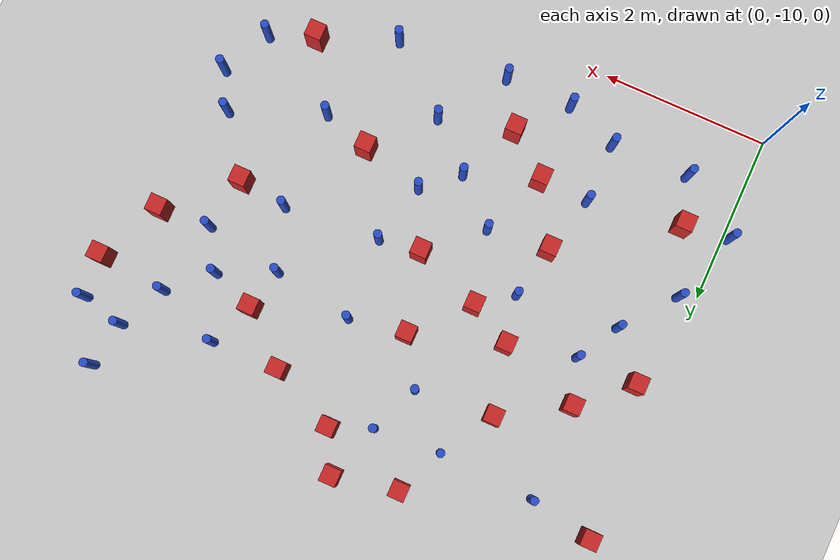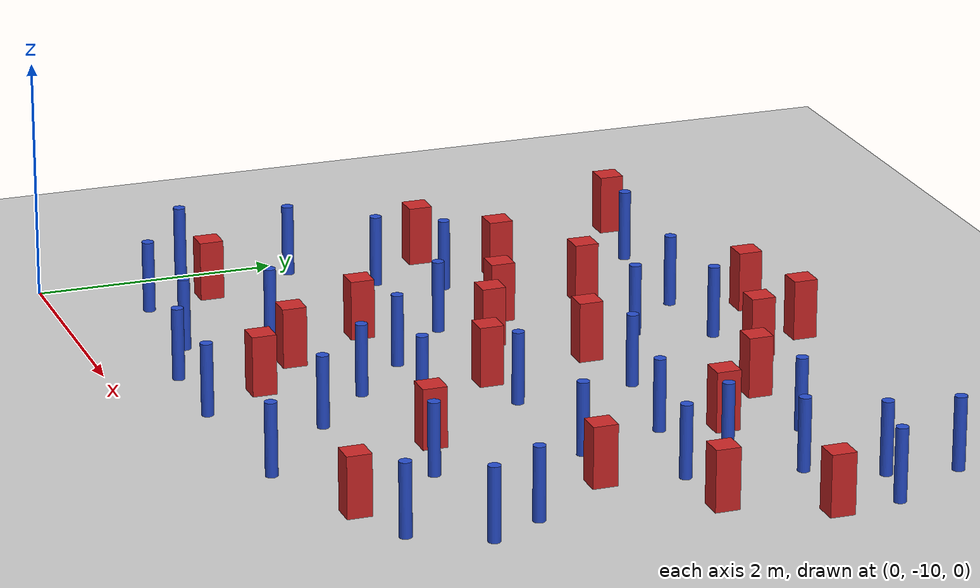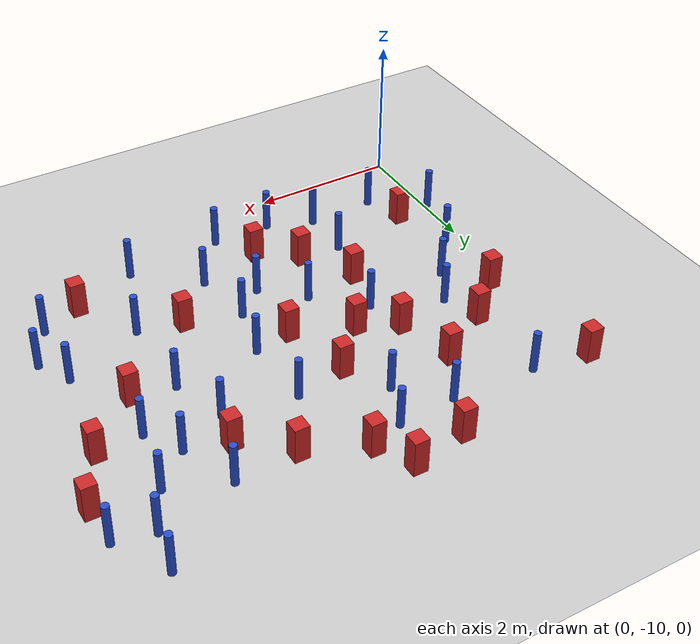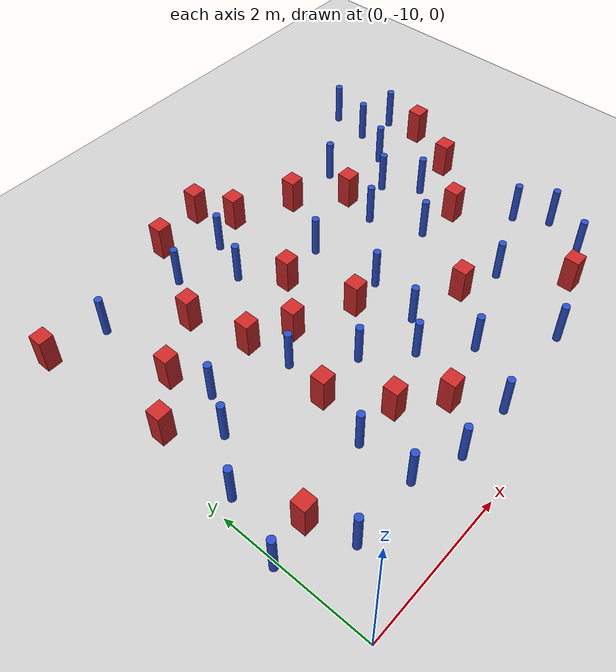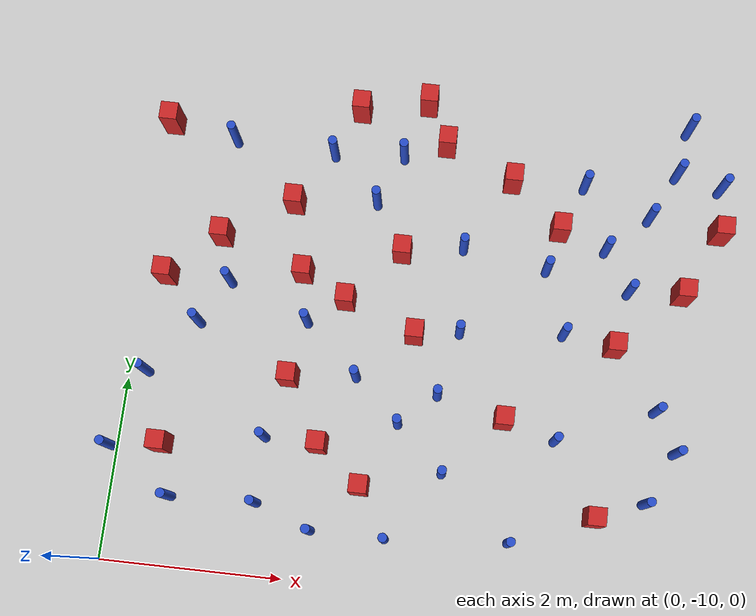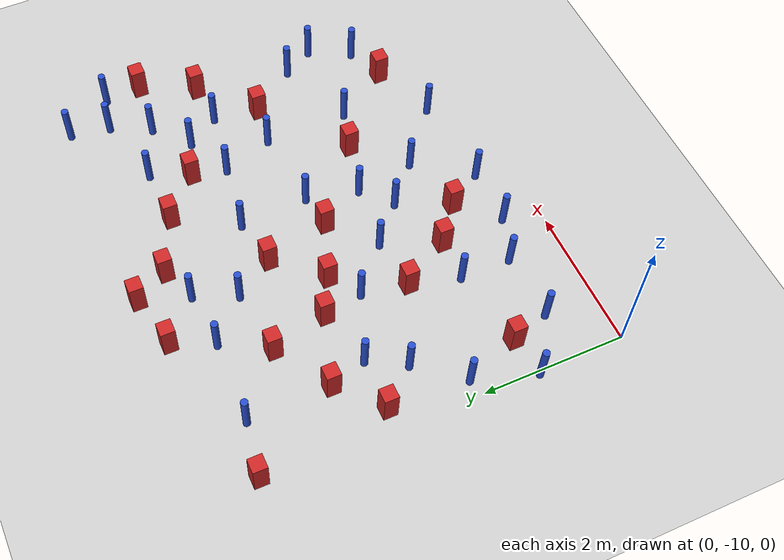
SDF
<sdf version="1.6">
 <world name="default">
  <model name="ground_plane">
   <static>1</static>
   <link name="link">
    <collision name="collision">
     <geometry><plane><normal>0 0 1</normal><size>100 100</size></plane></geometry>
     <surface><friction><ode><mu>100</mu><mu2>50</mu2></ode></friction></surface>
    </collision>
    <visual name="visual">
     <cast_shadows>0</cast_shadows>
     <geometry><plane><normal>0 0 1</normal><size>100 100</size></plane></geometry>
     <material>
      <ambient>1.0 1.0 1.0 1.0</ambient>
      <diffuse>0.8 0.8 0.8 1.0</diffuse>
      <specular>0.01 0.01 0.01 1.000000</specular>
     </material>
    </visual>
   </link>
  </model>
  <model name="pole_obstacle1">
   <static>true</static>
   <pose>4.55269154058 -6.26826545625 2.88873142074e-08 -9.90536690842e-09 4.60219948965e-07 -1.20965994976e-07</pose>
   <link name="link">
    <pose>0 0 0.3 0 -0 0</pose>
    <inertial>
     <mass>1</mass>
     <inertia><ixx>0.145833</ixx><ixy>0</ixy><ixz>0</ixz><iyy>0.145833</iyy><iyz>0</iyz><izz>0.125</izz></inertia>
    </inertial>
    <collision name="collision">
     <geometry><cylinder><radius>0.05</radius><length>.6</length></cylinder></geometry>
    </collision>
    <visual name="visual">
     <geometry><cylinder><radius>0.05</radius><length>.6</length></cylinder></geometry>
     <material>
      <script><name>Gazebo/Blue</name><uri>file://media/materials/scripts/gazebo.material</uri></script>
     </material>
    </visual>
   </link>
  </model>
  <model name="square_post_obstacle3">
   <static>true</static>
   <pose>4.07398690278 -5.25743221496 8.22691968438e-08 7.2212513382e-06 -7.54495500217e-07 2.29674213826e-05</pose>
   <link name="link">
    <pose>0 0 0.25 0 -0 0</pose>
    <inertial>
     <mass>100</mass>
     <inertia>
      <ixx>0.166667</ixx>
      <ixy>0</ixy>
      <ixz>0</ixz>
      <iyy>0.166667</iyy>
      <iyz>0</iyz>
      <izz>0.166667</izz>
     </inertia>
    </inertial>
    <collision name="collision"><geometry><box><size>.2 .2 .5</size></box></geometry></collision>
    <visual name="visual">
     <geometry><box><size>.2 .2 .5</size></box></geometry>
     <material>
      <script><name>Gazebo/Red</name><uri>file://media/materials/scripts/gazebo.material</uri></script>
     </material>
    </visual>
   </link>
  </model>
  <model name="square_post_obstacle10">
   <static>true</static>
   <pose>6.10000262031 -6.38535614664 8.22691968438e-08 7.22125133819e-06 -7.54495500217e-07 2.29674213826e-05</pose>
   <link name="link">
    <pose>0 0 0.25 0 -0 0</pose>
    <inertial>
     <mass>100</mass>
     <inertia>
      <ixx>0.166667</ixx>
      <ixy>0</ixy>
      <ixz>0</ixz>
      <iyy>0.166667</iyy>
      <iyz>0</iyz>
      <izz>0.166667</izz>
     </inertia>
    </inertial>
    <collision name="collision"><geometry><box><size>.2 .2 .5</size></box></geometry></collision>
    <visual name="visual">
     <geometry><box><size>.2 .2 .5</size></box></geometry>
     <material>
      <script><name>Gazebo/Red</name><uri>file://media/materials/scripts/gazebo.material</uri></script>
     </material>
    </visual>
   </link>
  </model>
  <model name="square_post_obstacle11">
   <static>true</static>
   <pose>0.0836850320657 -4.95521037136 8.22691968438e-08 7.2212513382e-06 -7.54495500217e-07 2.29674213826e-05</pose>
   <link name="link">
    <pose>0 0 0.25 0 -0 0</pose>
    <inertial>
     <mass>100</mass>
     <inertia>
      <ixx>0.166667</ixx>
      <ixy>0</ixy>
      <ixz>0</ixz>
      <iyy>0.166667</iyy>
      <iyz>0</iyz>
      <izz>0.166667</izz>
     </inertia>
    </inertial>
    <collision name="collision"><geometry><box><size>.2 .2 .5</size></box></geometry></collision>
    <visual name="visual">
     <geometry><box><size>.2 .2 .5</size></box></geometry>
     <material>
      <script><name>Gazebo/Red</name><uri>file://media/materials/scripts/gazebo.material</uri></script>
     </material>
    </visual>
   </link>
  </model>
  <model name="square_post_obstacle13">
   <static>true</static>
   <pose>5.29659677529 -8.98105700362 8.22691968438e-08 7.22125133819e-06 -7.54495500217e-07 2.29674213826e-05</pose>
   <link name="link">
    <pose>0 0 0.25 0 -0 0</pose>
    <inertial>
     <mass>100</mass>
     <inertia>
      <ixx>0.166667</ixx>
      <ixy>0</ixy>
      <ixz>0</ixz>
      <iyy>0.166667</iyy>
      <iyz>0</iyz>
      <izz>0.166667</izz>
     </inertia>
    </inertial>
    <collision name="collision"><geometry><box><size>.2 .2 .5</size></box></geometry></collision>
    <visual name="visual">
     <geometry><box><size>.2 .2 .5</size></box></geometry>
     <material>
      <script><name>Gazebo/Red</name><uri>file://media/materials/scripts/gazebo.material</uri></script>
     </material>
    </visual>
   </link>
  </model>
  <model name="pole_obstacle8">
   <static>true</static>
   <pose>5.4938373227 -6.43313451027 2.88873142074e-08 -9.90536690842e-09 4.60219948965e-07 -1.20965994976e-07</pose>
   <link name="link">
    <pose>0 0 0.3 0 -0 0</pose>
    <inertial>
     <mass>1</mass>
     <inertia><ixx>0.145833</ixx><ixy>0</ixy><ixz>0</ixz><iyy>0.145833</iyy><iyz>0</iyz><izz>0.125</izz></inertia>
    </inertial>
    <collision name="collision">
     <geometry><cylinder><radius>0.05</radius><length>.6</length></cylinder></geometry>
    </collision>
    <visual name="visual">
     <geometry><cylinder><radius>0.05</radius><length>.6</length></cylinder></geometry>
     <material>
      <script><name>Gazebo/Blue</name><uri>file://media/materials/scripts/gazebo.material</uri></script>
     </material>
    </visual>
   </link>
  </model>
  <model name="pole_obstacle10">
   <static>true</static>
   <pose>5.6658567567 -5.5417444176 2.88873142074e-08 -9.90536690842e-09 4.60219948965e-07 -1.20965994976e-07</pose>
   <link name="link">
    <pose>0 0 0.3 0 -0 0</pose>
    <inertial>
     <mass>1</mass>
     <inertia><ixx>0.145833</ixx><ixy>0</ixy><ixz>0</ixz><iyy>0.145833</iyy><iyz>0</iyz><izz>0.125</izz></inertia>
    </inertial>
    <collision name="collision">
     <geometry><cylinder><radius>0.05</radius><length>.6</length></cylinder></geometry>
    </collision>
    <visual name="visual">
     <geometry><cylinder><radius>0.05</radius><length>.6</length></cylinder></geometry>
     <material>
      <script><name>Gazebo/Blue</name><uri>file://media/materials/scripts/gazebo.material</uri></script>
     </material>
    </visual>
   </link>
  </model>
  <model name="pole_obstacle14">
   <static>true</static>
   <pose>4.80722969112 -8.19572813081 2.88873142074e-08 -9.9053668967e-09 4.60219948993e-07 -1.20965994957e-07</pose>
   <link name="link">
    <pose>0 0 0.3 0 -0 0</pose>
    <inertial>
     <mass>1</mass>
     <inertia><ixx>0.145833</ixx><ixy>0</ixy><ixz>0</ixz><iyy>0.145833</iyy><iyz>0</iyz><izz>0.125</izz></inertia>
    </inertial>
    <collision name="collision">
     <geometry><cylinder><radius>0.05</radius><length>.6</length></cylinder></geometry>
    </collision>
    <visual name="visual">
     <geometry><cylinder><radius>0.05</radius><length>.6</length></cylinder></geometry>
     <material>
      <script><name>Gazebo/Blue</name><uri>file://media/materials/scripts/gazebo.material</uri></script>
     </material>
    </visual>
   </link>
  </model>
  <model name="pole_obstacle17">
   <static>true</static>
   <pose>1.99570746869 -5.14558507064 2.88873142074e-08 -9.9053668918e-09 4.60219949005e-07 -1.20965994951e-07</pose>
   <link name="link">
    <pose>0 0 0.3 0 -0 0</pose>
    <inertial>
     <mass>1</mass>
     <inertia><ixx>0.145833</ixx><ixy>0</ixy><ixz>0</ixz><iyy>0.145833</iyy><iyz>0</iyz><izz>0.125</izz></inertia>
    </inertial>
    <collision name="collision">
     <geometry><cylinder><radius>0.05</radius><length>.6</length></cylinder></geometry>
    </collision>
    <visual name="visual">
     <geometry><cylinder><radius>0.05</radius><length>.6</length></cylinder></geometry>
     <material>
      <script><name>Gazebo/Blue</name><uri>file://media/materials/scripts/gazebo.material</uri></script>
     </material>
    </visual>
   </link>
  </model>
  <model name="pole_obstacle18">
   <static>true</static>
   <pose>4.90242069241 -5.23326689203 2.88873142074e-08 -9.90536690842e-09 4.60219948965e-07 -1.20965994976e-07</pose>
   <link name="link">
    <pose>0 0 0.3 0 -0 0</pose>
    <inertial>
     <mass>1</mass>
     <inertia><ixx>0.145833</ixx><ixy>0</ixy><ixz>0</ixz><iyy>0.145833</iyy><iyz>0</iyz><izz>0.125</izz></inertia>
    </inertial>
    <collision name="collision">
     <geometry><cylinder><radius>0.05</radius><length>.6</length></cylinder></geometry>
    </collision>
    <visual name="visual">
     <geometry><cylinder><radius>0.05</radius><length>.6</length></cylinder></geometry>
     <material>
      <script><name>Gazebo/Blue</name><uri>file://media/materials/scripts/gazebo.material</uri></script>
     </material>
    </visual>
   </link>
  </model>
  <model name="pole_obstacle22">
   <static>true</static>
   <pose>0.72259887172 -7.28445306025 2.88873142074e-08 -9.90536689661e-09 4.60219948993e-07 -1.20965994957e-07</pose>
   <link name="link">
    <pose>0 0 0.3 0 -0 0</pose>
    <inertial>
     <mass>1</mass>
     <inertia><ixx>0.145833</ixx><ixy>0</ixy><ixz>0</ixz><iyy>0.145833</iyy><iyz>0</iyz><izz>0.125</izz></inertia>
    </inertial>
    <collision name="collision">
     <geometry><cylinder><radius>0.05</radius><length>.6</length></cylinder></geometry>
    </collision>
    <visual name="visual">
     <geometry><cylinder><radius>0.05</radius><length>.6</length></cylinder></geometry>
     <material>
      <script><name>Gazebo/Blue</name><uri>file://media/materials/scripts/gazebo.material</uri></script>
     </material>
    </visual>
   </link>
  </model>
  <model name="pole_obstacle24">
   <static>true</static>
   <pose>3.06327365985 -9.45333763616 2.88873142074e-08 -9.90536692318e-09 4.6021994893e-07 -1.20965994988e-07</pose>
   <link name="link">
    <pose>0 0 0.3 0 -0 0</pose>
    <inertial>
     <mass>1</mass>
     <inertia><ixx>0.145833</ixx><ixy>0</ixy><ixz>0</ixz><iyy>0.145833</iyy><iyz>0</iyz><izz>0.125</izz></inertia>
    </inertial>
    <collision name="collision">
     <geometry><cylinder><radius>0.05</radius><length>.6</length></cylinder></geometry>
    </collision>
    <visual name="visual">
     <geometry><cylinder><radius>0.05</radius><length>.6</length></cylinder></geometry>
     <material>
      <script><name>Gazebo/Blue</name><uri>file://media/materials/scripts/gazebo.material</uri></script>
     </material>
    </visual>
   </link>
  </model>
  <model name="square_post_obstacle34">
   <static>true</static>
   <pose>3.0186149603 -4.41609404769 8.22691968438e-08 7.2212513382e-06 -7.54495500217e-07 2.29674213826e-05</pose>
   <link name="link">
    <pose>0 0 0.25 0 -0 0</pose>
    <inertial>
     <mass>100</mass>
     <inertia>
      <ixx>0.166667</ixx>
      <ixy>0</ixy>
      <ixz>0</ixz>
      <iyy>0.166667</iyy>
      <iyz>0</iyz>
      <izz>0.166667</izz>
     </inertia>
    </inertial>
    <collision name="collision"><geometry><box><size>.2 .2 .5</size></box></geometry></collision>
    <visual name="visual">
     <geometry><box><size>.2 .2 .5</size></box></geometry>
     <material>
      <script><name>Gazebo/Red</name><uri>file://media/materials/scripts/gazebo.material</uri></script>
     </material>
    </visual>
   </link>
  </model>
  <model name="square_post_obstacle40">
   <static>true</static>
   <pose>2.73259866692 -8.91407717988 8.22691968438e-08 7.22125133819e-06 -7.54495500217e-07 2.29674213826e-05</pose>
   <link name="link">
    <pose>0 0 0.25 0 -0 0</pose>
    <inertial>
     <mass>100</mass>
     <inertia>
      <ixx>0.166667</ixx>
      <ixy>0</ixy>
      <ixz>0</ixz>
      <iyy>0.166667</iyy>
      <iyz>0</iyz>
      <izz>0.166667</izz>
     </inertia>
    </inertial>
    <collision name="collision"><geometry><box><size>.2 .2 .5</size></box></geometry></collision>
    <visual name="visual">
     <geometry><box><size>.2 .2 .5</size></box></geometry>
     <material>
      <script><name>Gazebo/Red</name><uri>file://media/materials/scripts/gazebo.material</uri></script>
     </material>
    </visual>
   </link>
  </model>
  <model name="pole_obstacle44">
   <static>true</static>
   <pose>-0.0475928471051 -8.76342699352 2.88873142074e-08 -9.90536690898e-09 4.60219948964e-07 -1.20965994978e-07</pose>
   <link name="link">
    <pose>0 0 0.3 0 -0 0</pose>
    <inertial>
     <mass>1</mass>
     <inertia><ixx>0.145833</ixx><ixy>0</ixy><ixz>0</ixz><iyy>0.145833</iyy><iyz>0</iyz><izz>0.125</izz></inertia>
    </inertial>
    <collision name="collision">
     <geometry><cylinder><radius>0.05</radius><length>.6</length></cylinder></geometry>
    </collision>
    <visual name="visual">
     <geometry><cylinder><radius>0.05</radius><length>.6</length></cylinder></geometry>
     <material>
      <script><name>Gazebo/Blue</name><uri>file://media/materials/scripts/gazebo.material</uri></script>
     </material>
    </visual>
   </link>
  </model>
  <model name="pole_obstacle54">
   <static>true</static>
   <pose>5.83543803348 -8.77664996333 2.88873142074e-08 -9.9053668967e-09 4.60219948993e-07 -1.20965994957e-07</pose>
   <link name="link">
    <pose>0 0 0.3 0 -0 0</pose>
    <inertial>
     <mass>1</mass>
     <inertia><ixx>0.145833</ixx><ixy>0</ixy><ixz>0</ixz><iyy>0.145833</iyy><iyz>0</iyz><izz>0.125</izz></inertia>
    </inertial>
    <collision name="collision">
     <geometry><cylinder><radius>0.05</radius><length>.6</length></cylinder></geometry>
    </collision>
    <visual name="visual">
     <geometry><cylinder><radius>0.05</radius><length>.6</length></cylinder></geometry>
     <material>
      <script><name>Gazebo/Blue</name><uri>file://media/materials/scripts/gazebo.material</uri></script>
     </material>
    </visual>
   </link>
  </model>
  <model name="pole_obstacle68">
   <static>true</static>
   <pose>1.01084907551 -6.78260982141 2.88873142074e-08 -9.90536689905e-09 4.60219948988e-07 -1.20965994961e-07</pose>
   <link name="link">
    <pose>0 0 0.3 0 -0 0</pose>
    <inertial>
     <mass>1</mass>
     <inertia><ixx>0.145833</ixx><ixy>0</ixy><ixz>0</ixz><iyy>0.145833</iyy><iyz>0</iyz><izz>0.125</izz></inertia>
    </inertial>
    <collision name="collision">
     <geometry><cylinder><radius>0.05</radius><length>.6</length></cylinder></geometry>
    </collision>
    <visual name="visual">
     <geometry><cylinder><radius>0.05</radius><length>.6</length></cylinder></geometry>
     <material>
      <script><name>Gazebo/Blue</name><uri>file://media/materials/scripts/gazebo.material</uri></script>
     </material>
    </visual>
   </link>
  </model>
  <model name="pole_obstacle73">
   <static>true</static>
   <pose>5.88566444213 -7.75572606142 2.88873142074e-08 -9.90536690842e-09 4.60219948965e-07 -1.20965994976e-07</pose>
   <link name="link">
    <pose>0 0 0.3 0 -0 0</pose>
    <inertial>
     <mass>1</mass>
     <inertia><ixx>0.145833</ixx><ixy>0</ixy><ixz>0</ixz><iyy>0.145833</iyy><iyz>0</iyz><izz>0.125</izz></inertia>
    </inertial>
    <collision name="collision">
     <geometry><cylinder><radius>0.05</radius><length>.6</length></cylinder></geometry>
    </collision>
    <visual name="visual">
     <geometry><cylinder><radius>0.05</radius><length>.6</length></cylinder></geometry>
     <material>
      <script><name>Gazebo/Blue</name><uri>file://media/materials/scripts/gazebo.material</uri></script>
     </material>
    </visual>
   </link>
  </model>
  <model name="pole_obstacle74">
   <static>true</static>
   <pose>0.838100732608 -5.09297883108 2.88873142074e-08 -9.90536689661e-09 4.60219948993e-07 -1.20965994957e-07</pose>
   <link name="link">
    <pose>0 0 0.3 0 -0 0</pose>
    <inertial>
     <mass>1</mass>
     <inertia><ixx>0.145833</ixx><ixy>0</ixy><ixz>0</ixz><iyy>0.145833</iyy><iyz>0</iyz><izz>0.125</izz></inertia>
    </inertial>
    <collision name="collision">
     <geometry><cylinder><radius>0.05</radius><length>.6</length></cylinder></geometry>
    </collision>
    <visual name="visual">
     <geometry><cylinder><radius>0.05</radius><length>.6</length></cylinder></geometry>
     <material>
      <script><name>Gazebo/Blue</name><uri>file://media/materials/scripts/gazebo.material</uri></script>
     </material>
    </visual>
   </link>
  </model>
  <model name="square_post_obstacle78">
   <static>true</static>
   <pose>2.90471631632 -6.23157223287 8.22691968438e-08 7.22125133819e-06 -7.54495500217e-07 2.29674213826e-05</pose>
   <link name="link">
    <pose>0 0 0.25 0 -0 0</pose>
    <inertial>
     <mass>100</mass>
     <inertia>
      <ixx>0.166667</ixx>
      <ixy>0</ixy>
      <ixz>0</ixz>
      <iyy>0.166667</iyy>
      <iyz>0</iyz>
      <izz>0.166667</izz>
     </inertia>
    </inertial>
    <collision name="collision"><geometry><box><size>.2 .2 .5</size></box></geometry></collision>
    <visual name="visual">
     <geometry><box><size>.2 .2 .5</size></box></geometry>
     <material>
      <script><name>Gazebo/Red</name><uri>file://media/materials/scripts/gazebo.material</uri></script>
     </material>
    </visual>
   </link>
  </model>
  <model name="pole_obstacle83">
   <static>true</static>
   <pose>2.55182552375 -5.67773855486 2.88873142074e-08 -9.90536689859e-09 4.60219948989e-07 -1.20965994961e-07</pose>
   <link name="link">
    <pose>0 0 0.3 0 -0 0</pose>
    <inertial>
     <mass>1</mass>
     <inertia><ixx>0.145833</ixx><ixy>0</ixy><ixz>0</ixz><iyy>0.145833</iyy><iyz>0</iyz><izz>0.125</izz></inertia>
    </inertial>
    <collision name="collision">
     <geometry><cylinder><radius>0.05</radius><length>.6</length></cylinder></geometry>
    </collision>
    <visual name="visual">
     <geometry><cylinder><radius>0.05</radius><length>.6</length></cylinder></geometry>
     <material>
      <script><name>Gazebo/Blue</name><uri>file://media/materials/scripts/gazebo.material</uri></script>
     </material>
    </visual>
   </link>
  </model>
  <model name="pole_obstacle85">
   <static>true</static>
   <pose>1.62750034414 -8.49258203916 2.88873142074e-08 -9.90536690474e-09 4.60219948974e-07 -1.2096599497e-07</pose>
   <link name="link">
    <pose>0 0 0.3 0 -0 0</pose>
    <inertial>
     <mass>1</mass>
     <inertia><ixx>0.145833</ixx><ixy>0</ixy><ixz>0</ixz><iyy>0.145833</iyy><iyz>0</iyz><izz>0.125</izz></inertia>
    </inertial>
    <collision name="collision">
     <geometry><cylinder><radius>0.05</radius><length>.6</length></cylinder></geometry>
    </collision>
    <visual name="visual">
     <geometry><cylinder><radius>0.05</radius><length>.6</length></cylinder></geometry>
     <material>
      <script><name>Gazebo/Blue</name><uri>file://media/materials/scripts/gazebo.material</uri></script>
     </material>
    </visual>
   </link>
  </model>
  <model name="pole_obstacle88">
   <static>true</static>
   <pose>3.60888057573 -8.68529424891 2.88873142074e-08 -9.90536692318e-09 4.6021994893e-07 -1.20965994988e-07</pose>
   <link name="link">
    <pose>0 0 0.3 0 -0 0</pose>
    <inertial>
     <mass>1</mass>
     <inertia><ixx>0.145833</ixx><ixy>0</ixy><ixz>0</ixz><iyy>0.145833</iyy><iyz>0</iyz><izz>0.125</izz></inertia>
    </inertial>
    <collision name="collision">
     <geometry><cylinder><radius>0.05</radius><length>.6</length></cylinder></geometry>
    </collision>
    <visual name="visual">
     <geometry><cylinder><radius>0.05</radius><length>.6</length></cylinder></geometry>
     <material>
      <script><name>Gazebo/Blue</name><uri>file://media/materials/scripts/gazebo.material</uri></script>
     </material>
    </visual>
   </link>
  </model>
  <model name="pole_obstacle89">
   <static>true</static>
   <pose>3.59193570482 -6.1131325622 2.88873142074e-08 -9.90536689859e-09 4.60219948989e-07 -1.20965994961e-07</pose>
   <link name="link">
    <pose>0 0 0.3 0 -0 0</pose>
    <inertial>
     <mass>1</mass>
     <inertia><ixx>0.145833</ixx><ixy>0</ixy><ixz>0</ixz><iyy>0.145833</iyy><iyz>0</iyz><izz>0.125</izz></inertia>
    </inertial>
    <collision name="collision">
     <geometry><cylinder><radius>0.05</radius><length>.6</length></cylinder></geometry>
    </collision>
    <visual name="visual">
     <geometry><cylinder><radius>0.05</radius><length>.6</length></cylinder></geometry>
     <material>
      <script><name>Gazebo/Blue</name><uri>file://media/materials/scripts/gazebo.material</uri></script>
     </material>
    </visual>
   </link>
  </model>
  <model name="pole_obstacle92">
   <static>true</static>
   <pose>2.2477342189 -9.44958302536 2.88873142074e-08 -9.90536692318e-09 4.6021994893e-07 -1.20965994988e-07</pose>
   <link name="link">
    <pose>0 0 0.3 0 -0 0</pose>
    <inertial>
     <mass>1</mass>
     <inertia><ixx>0.145833</ixx><ixy>0</ixy><ixz>0</ixz><iyy>0.145833</iyy><iyz>0</iyz><izz>0.125</izz></inertia>
    </inertial>
    <collision name="collision">
     <geometry><cylinder><radius>0.05</radius><length>.6</length></cylinder></geometry>
    </collision>
    <visual name="visual">
     <geometry><cylinder><radius>0.05</radius><length>.6</length></cylinder></geometry>
     <material>
      <script><name>Gazebo/Blue</name><uri>file://media/materials/scripts/gazebo.material</uri></script>
     </material>
    </visual>
   </link>
  </model>
  <model name="pole_obstacle118">
   <static>true</static>
   <pose>2.54889929906 -7.71692714023 2.88873142074e-08 -9.90536689859e-09 4.60219948989e-07 -1.20965994961e-07</pose>
   <link name="link">
    <pose>0 0 0.3 0 -0 0</pose>
    <inertial>
     <mass>1</mass>
     <inertia><ixx>0.145833</ixx><ixy>0</ixy><ixz>0</ixz><iyy>0.145833</iyy><iyz>0</iyz><izz>0.125</izz></inertia>
    </inertial>
    <collision name="collision">
     <geometry><cylinder><radius>0.05</radius><length>.6</length></cylinder></geometry>
    </collision>
    <visual name="visual">
     <geometry><cylinder><radius>0.05</radius><length>.6</length></cylinder></geometry>
     <material>
      <script><name>Gazebo/Blue</name><uri>file://media/materials/scripts/gazebo.material</uri></script>
     </material>
    </visual>
   </link>
  </model>
  <model name="pole_obstacle124">
   <static>true</static>
   <pose>1.62426581649 -9.21613483166 2.88873142074e-08 -9.90536690474e-09 4.60219948974e-07 -1.2096599497e-07</pose>
   <link name="link">
    <pose>0 0 0.3 0 -0 0</pose>
    <inertial>
     <mass>1</mass>
     <inertia><ixx>0.145833</ixx><ixy>0</ixy><ixz>0</ixz><iyy>0.145833</iyy><iyz>0</iyz><izz>0.125</izz></inertia>
    </inertial>
    <collision name="collision">
     <geometry><cylinder><radius>0.05</radius><length>.6</length></cylinder></geometry>
    </collision>
    <visual name="visual">
     <geometry><cylinder><radius>0.05</radius><length>.6</length></cylinder></geometry>
     <material>
      <script><name>Gazebo/Blue</name><uri>file://media/materials/scripts/gazebo.material</uri></script>
     </material>
    </visual>
   </link>
  </model>
  <model name="pole_obstacle127">
   <static>true</static>
   <pose>0.681353075164 -9.24484601753 2.88873142074e-08 -9.90536690779e-09 4.60219948967e-07 -1.20965994975e-07</pose>
   <link name="link">
    <pose>0 0 0.3 0 -0 0</pose>
    <inertial>
     <mass>1</mass>
     <inertia><ixx>0.145833</ixx><ixy>0</ixy><ixz>0</ixz><iyy>0.145833</iyy><iyz>0</iyz><izz>0.125</izz></inertia>
    </inertial>
    <collision name="collision">
     <geometry><cylinder><radius>0.05</radius><length>.6</length></cylinder></geometry>
    </collision>
    <visual name="visual">
     <geometry><cylinder><radius>0.05</radius><length>.6</length></cylinder></geometry>
     <material>
      <script><name>Gazebo/Blue</name><uri>file://media/materials/scripts/gazebo.material</uri></script>
     </material>
    </visual>
   </link>
  </model>
  <model name="pole_obstacle129">
   <static>true</static>
   <pose>3.47291972524 -7.82813785056 2.88873142074e-08 -9.90536689859e-09 4.60219948989e-07 -1.20965994961e-07</pose>
   <link name="link">
    <pose>0 0 0.3 0 -0 0</pose>
    <inertial>
     <mass>1</mass>
     <inertia><ixx>0.145833</ixx><ixy>0</ixy><ixz>0</ixz><iyy>0.145833</iyy><iyz>0</iyz><izz>0.125</izz></inertia>
    </inertial>
    <collision name="collision">
     <geometry><cylinder><radius>0.05</radius><length>.6</length></cylinder></geometry>
    </collision>
    <visual name="visual">
     <geometry><cylinder><radius>0.05</radius><length>.6</length></cylinder></geometry>
     <material>
      <script><name>Gazebo/Blue</name><uri>file://media/materials/scripts/gazebo.material</uri></script>
     </material>
    </visual>
   </link>
  </model>
  <model name="pole_obstacle130">
   <static>true</static>
   <pose>6.0434853394 -4.43294765035 2.88873142074e-08 -9.90536690842e-09 4.60219948965e-07 -1.20965994976e-07</pose>
   <link name="link">
    <pose>0 0 0.3 0 -0 0</pose>
    <inertial>
     <mass>1</mass>
     <inertia><ixx>0.145833</ixx><ixy>0</ixy><ixz>0</ixz><iyy>0.145833</iyy><iyz>0</iyz><izz>0.125</izz></inertia>
    </inertial>
    <collision name="collision">
     <geometry><cylinder><radius>0.05</radius><length>.6</length></cylinder></geometry>
    </collision>
    <visual name="visual">
     <geometry><cylinder><radius>0.05</radius><length>.6</length></cylinder></geometry>
     <material>
      <script><name>Gazebo/Blue</name><uri>file://media/materials/scripts/gazebo.material</uri></script>
     </material>
    </visual>
   </link>
  </model>
  <model name="square_post_obstacle116">
   <static>true</static>
   <pose>5.37578413041 -7.07214340687 8.22691968438e-08 7.2212513382e-06 -7.54495500217e-07 2.29674213826e-05</pose>
   <link name="link">
    <pose>0 0 0.25 0 -0 0</pose>
    <inertial>
     <mass>100</mass>
     <inertia>
      <ixx>0.166667</ixx>
      <ixy>0</ixy>
      <ixz>0</ixz>
      <iyy>0.166667</iyy>
      <iyz>0</iyz>
      <izz>0.166667</izz>
     </inertia>
    </inertial>
    <collision name="collision"><geometry><box><size>.2 .2 .5</size></box></geometry></collision>
    <visual name="visual">
     <geometry><box><size>.2 .2 .5</size></box></geometry>
     <material>
      <script><name>Gazebo/Red</name><uri>file://media/materials/scripts/gazebo.material</uri></script>
     </material>
    </visual>
   </link>
  </model>
  <model name="square_post_obstacle130">
   <static>true</static>
   <pose>4.66119386687 -5.77809549474 8.22691968438e-08 7.2212513382e-06 -7.54495500217e-07 2.29674213826e-05</pose>
   <link name="link">
    <pose>0 0 0.25 0 -0 0</pose>
    <inertial>
     <mass>100</mass>
     <inertia>
      <ixx>0.166667</ixx>
      <ixy>0</ixy>
      <ixz>0</ixz>
      <iyy>0.166667</iyy>
      <iyz>0</iyz>
      <izz>0.166667</izz>
     </inertia>
    </inertial>
    <collision name="collision"><geometry><box><size>.2 .2 .5</size></box></geometry></collision>
    <visual name="visual">
     <geometry><box><size>.2 .2 .5</size></box></geometry>
     <material>
      <script><name>Gazebo/Red</name><uri>file://media/materials/scripts/gazebo.material</uri></script>
     </material>
    </visual>
   </link>
  </model>
  <model name="pole_obstacle144">
   <static>true</static>
   <pose>5.94608983856 -4.988300965 2.88873142074e-08 -9.90536690842e-09 4.60219948965e-07 -1.20965994976e-07</pose>
   <link name="link">
    <pose>0 0 0.3 0 -0 0</pose>
    <inertial>
     <mass>1</mass>
     <inertia><ixx>0.145833</ixx><ixy>0</ixy><ixz>0</ixz><iyy>0.145833</iyy><iyz>0</iyz><izz>0.125</izz></inertia>
    </inertial>
    <collision name="collision">
     <geometry><cylinder><radius>0.05</radius><length>.6</length></cylinder></geometry>
    </collision>
    <visual name="visual">
     <geometry><cylinder><radius>0.05</radius><length>.6</length></cylinder></geometry>
     <material>
      <script><name>Gazebo/Blue</name><uri>file://media/materials/scripts/gazebo.material</uri></script>
     </material>
    </visual>
   </link>
  </model>
  <model name="square_post_obstacle135">
   <static>true</static>
   <pose>3.28114276242 -4.89798385758 8.22691968438e-08 7.2212513382e-06 -7.54495500217e-07 2.29674213826e-05</pose>
   <link name="link">
    <pose>0 0 0.25 0 -0 0</pose>
    <inertial>
     <mass>100</mass>
     <inertia>
      <ixx>0.166667</ixx>
      <ixy>0</ixy>
      <ixz>0</ixz>
      <iyy>0.166667</iyy>
      <iyz>0</iyz>
      <izz>0.166667</izz>
     </inertia>
    </inertial>
    <collision name="collision"><geometry><box><size>.2 .2 .5</size></box></geometry></collision>
    <visual name="visual">
     <geometry><box><size>.2 .2 .5</size></box></geometry>
     <material>
      <script><name>Gazebo/Red</name><uri>file://media/materials/scripts/gazebo.material</uri></script>
     </material>
    </visual>
   </link>
  </model>
  <model name="pole_obstacle147">
   <static>true</static>
   <pose>3.64725405815 -7.09528034385 2.88873142074e-08 -9.90536689859e-09 4.60219948989e-07 -1.20965994961e-07</pose>
   <link name="link">
    <pose>0 0 0.3 0 -0 0</pose>
    <inertial>
     <mass>1</mass>
     <inertia><ixx>0.145833</ixx><ixy>0</ixy><ixz>0</ixz><iyy>0.145833</iyy><iyz>0</iyz><izz>0.125</izz></inertia>
    </inertial>
    <collision name="collision">
     <geometry><cylinder><radius>0.05</radius><length>.6</length></cylinder></geometry>
    </collision>
    <visual name="visual">
     <geometry><cylinder><radius>0.05</radius><length>.6</length></cylinder></geometry>
     <material>
      <script><name>Gazebo/Blue</name><uri>file://media/materials/scripts/gazebo.material</uri></script>
     </material>
    </visual>
   </link>
  </model>
  <model name="square_post_obstacle137">
   <static>true</static>
   <pose>4.22529978321 -8.01741184882 8.22691968438e-08 7.22125133819e-06 -7.54495500217e-07 2.29674213826e-05</pose>
   <link name="link">
    <pose>0 0 0.25 0 -0 0</pose>
    <inertial>
     <mass>100</mass>
     <inertia>
      <ixx>0.166667</ixx>
      <ixy>0</ixy>
      <ixz>0</ixz>
      <iyy>0.166667</iyy>
      <iyz>0</iyz>
      <izz>0.166667</izz>
     </inertia>
    </inertial>
    <collision name="collision"><geometry><box><size>.2 .2 .5</size></box></geometry></collision>
    <visual name="visual">
     <geometry><box><size>.2 .2 .5</size></box></geometry>
     <material>
      <script><name>Gazebo/Red</name><uri>file://media/materials/scripts/gazebo.material</uri></script>
     </material>
    </visual>
   </link>
  </model>
  <model name="square_post_obstacle143">
   <static>true</static>
   <pose>6.47603820602 -5.62267805679 8.22691968438e-08 7.22125133819e-06 -7.54495500217e-07 2.29674213826e-05</pose>
   <link name="link">
    <pose>0 0 0.25 0 -0 0</pose>
    <inertial>
     <mass>100</mass>
     <inertia>
      <ixx>0.166667</ixx>
      <ixy>0</ixy>
      <ixz>0</ixz>
      <iyy>0.166667</iyy>
      <iyz>0</iyz>
      <izz>0.166667</izz>
     </inertia>
    </inertial>
    <collision name="collision"><geometry><box><size>.2 .2 .5</size></box></geometry></collision>
    <visual name="visual">
     <geometry><box><size>.2 .2 .5</size></box></geometry>
     <material>
      <script><name>Gazebo/Red</name><uri>file://media/materials/scripts/gazebo.material</uri></script>
     </material>
    </visual>
   </link>
  </model>
  <model name="square_post_obstacle144">
   <static>true</static>
   <pose>1.80923676494 -7.79426188735 8.22691968438e-08 7.2212513382e-06 -7.54495500217e-07 2.29674213826e-05</pose>
   <link name="link">
    <pose>0 0 0.25 0 -0 0</pose>
    <inertial>
     <mass>100</mass>
     <inertia>
      <ixx>0.166667</ixx>
      <ixy>0</ixy>
      <ixz>0</ixz>
      <iyy>0.166667</iyy>
      <iyz>0</iyz>
      <izz>0.166667</izz>
     </inertia>
    </inertial>
    <collision name="collision"><geometry><box><size>.2 .2 .5</size></box></geometry></collision>
    <visual name="visual">
     <geometry><box><size>.2 .2 .5</size></box></geometry>
     <material>
      <script><name>Gazebo/Red</name><uri>file://media/materials/scripts/gazebo.material</uri></script>
     </material>
    </visual>
   </link>
  </model>
  <model name="square_post_obstacle145">
   <static>true</static>
   <pose>2.33578315656 -6.85243444326 8.22691968438e-08 7.2212513382e-06 -7.54495500217e-07 2.29674213826e-05</pose>
   <link name="link">
    <pose>0 0 0.25 0 -0 0</pose>
    <inertial>
     <mass>100</mass>
     <inertia>
      <ixx>0.166667</ixx>
      <ixy>0</ixy>
      <ixz>0</ixz>
      <iyy>0.166667</iyy>
      <iyz>0</iyz>
      <izz>0.166667</izz>
     </inertia>
    </inertial>
    <collision name="collision"><geometry><box><size>.2 .2 .5</size></box></geometry></collision>
    <visual name="visual">
     <geometry><box><size>.2 .2 .5</size></box></geometry>
     <material>
      <script><name>Gazebo/Red</name><uri>file://media/materials/scripts/gazebo.material</uri></script>
     </material>
    </visual>
   </link>
  </model>
  <model name="square_post_obstacle150">
   <static>true</static>
   <pose>2.22464360012 -8.50273606836 8.22691968438e-08 7.22125133819e-06 -7.54495500217e-07 2.29674213826e-05</pose>
   <link name="link">
    <pose>0 0 0.25 0 -0 0</pose>
    <inertial>
     <mass>100</mass>
     <inertia>
      <ixx>0.166667</ixx>
      <ixy>0</ixy>
      <ixz>0</ixz>
      <iyy>0.166667</iyy>
      <iyz>0</iyz>
      <izz>0.166667</izz>
     </inertia>
    </inertial>
    <collision name="collision"><geometry><box><size>.2 .2 .5</size></box></geometry></collision>
    <visual name="visual">
     <geometry><box><size>.2 .2 .5</size></box></geometry>
     <material>
      <script><name>Gazebo/Red</name><uri>file://media/materials/scripts/gazebo.material</uri></script>
     </material>
    </visual>
   </link>
  </model>
  <model name="pole_obstacle162">
   <static>true</static>
   <pose>6.45618642376 -5.10792595973 2.88873142074e-08 -9.90536690842e-09 4.60219948965e-07 -1.20965994976e-07</pose>
   <link name="link">
    <pose>0 0 0.3 0 -0 0</pose>
    <inertial>
     <mass>1</mass>
     <inertia><ixx>0.145833</ixx><ixy>0</ixy><ixz>0</ixz><iyy>0.145833</iyy><iyz>0</iyz><izz>0.125</izz></inertia>
    </inertial>
    <collision name="collision">
     <geometry><cylinder><radius>0.05</radius><length>.6</length></cylinder></geometry>
    </collision>
    <visual name="visual">
     <geometry><cylinder><radius>0.05</radius><length>.6</length></cylinder></geometry>
     <material>
      <script><name>Gazebo/Blue</name><uri>file://media/materials/scripts/gazebo.material</uri></script>
     </material>
    </visual>
   </link>
  </model>
  <model name="square_post_obstacle156">
   <static>true</static>
   <pose>3.14520390523 -7.16529280599 8.22691968438e-08 7.22125133819e-06 -7.54495500217e-07 2.29674213826e-05</pose>
   <link name="link">
    <pose>0 0 0.25 0 -0 0</pose>
    <inertial>
     <mass>100</mass>
     <inertia>
      <ixx>0.166667</ixx>
      <ixy>0</ixy>
      <ixz>0</ixz>
      <iyy>0.166667</iyy>
      <iyz>0</iyz>
      <izz>0.166667</izz>
     </inertia>
    </inertial>
    <collision name="collision"><geometry><box><size>.2 .2 .5</size></box></geometry></collision>
    <visual name="visual">
     <geometry><box><size>.2 .2 .5</size></box></geometry>
     <material>
      <script><name>Gazebo/Red</name><uri>file://media/materials/scripts/gazebo.material</uri></script>
     </material>
    </visual>
   </link>
  </model>
  <model name="square_post_obstacle162">
   <static>true</static>
   <pose>0.850312009444 -6.24978193282 8.22691968438e-08 7.2212513382e-06 -7.54495500217e-07 2.29674213826e-05</pose>
   <link name="link">
    <pose>0 0 0.25 0 -0 0</pose>
    <inertial>
     <mass>100</mass>
     <inertia>
      <ixx>0.166667</ixx>
      <ixy>0</ixy>
      <ixz>0</ixz>
      <iyy>0.166667</iyy>
      <iyz>0</iyz>
      <izz>0.166667</izz>
     </inertia>
    </inertial>
    <collision name="collision"><geometry><box><size>.2 .2 .5</size></box></geometry></collision>
    <visual name="visual">
     <geometry><box><size>.2 .2 .5</size></box></geometry>
     <material>
      <script><name>Gazebo/Red</name><uri>file://media/materials/scripts/gazebo.material</uri></script>
     </material>
    </visual>
   </link>
  </model>
  <model name="pole_obstacle173">
   <static>true</static>
   <pose>5.19919640361 -5.96851997011 2.88873142074e-08 -9.90536690842e-09 4.60219948965e-07 -1.20965994976e-07</pose>
   <link name="link">
    <pose>0 0 0.3 0 -0 0</pose>
    <inertial>
     <mass>1</mass>
     <inertia><ixx>0.145833</ixx><ixy>0</ixy><ixz>0</ixz><iyy>0.145833</iyy><iyz>0</iyz><izz>0.125</izz></inertia>
    </inertial>
    <collision name="collision">
     <geometry><cylinder><radius>0.05</radius><length>.6</length></cylinder></geometry>
    </collision>
    <visual name="visual">
     <geometry><cylinder><radius>0.05</radius><length>.6</length></cylinder></geometry>
     <material>
      <script><name>Gazebo/Blue</name><uri>file://media/materials/scripts/gazebo.material</uri></script>
     </material>
    </visual>
   </link>
  </model>
  <model name="pole_obstacle174">
   <static>true</static>
   <pose>4.80358650193 -6.99641568699 2.88873142074e-08 -9.90536690842e-09 4.60219948965e-07 -1.20965994976e-07</pose>
   <link name="link">
    <pose>0 0 0.3 0 -0 0</pose>
    <inertial>
     <mass>1</mass>
     <inertia><ixx>0.145833</ixx><ixy>0</ixy><ixz>0</ixz><iyy>0.145833</iyy><iyz>0</iyz><izz>0.125</izz></inertia>
    </inertial>
    <collision name="collision">
     <geometry><cylinder><radius>0.05</radius><length>.6</length></cylinder></geometry>
    </collision>
    <visual name="visual">
     <geometry><cylinder><radius>0.05</radius><length>.6</length></cylinder></geometry>
     <material>
      <script><name>Gazebo/Blue</name><uri>file://media/materials/scripts/gazebo.material</uri></script>
     </material>
    </visual>
   </link>
  </model>
  <model name="pole_obstacle179">
   <static>true</static>
   <pose>0.22523985346 -7.89884562628 2.88873142074e-08 -9.90536689491e-09 4.60219948997e-07 -1.20965994955e-07</pose>
   <link name="link">
    <pose>0 0 0.3 0 -0 0</pose>
    <inertial>
     <mass>1</mass>
     <inertia><ixx>0.145833</ixx><ixy>0</ixy><ixz>0</ixz><iyy>0.145833</iyy><iyz>0</iyz><izz>0.125</izz></inertia>
    </inertial>
    <collision name="collision">
     <geometry><cylinder><radius>0.05</radius><length>.6</length></cylinder></geometry>
    </collision>
    <visual name="visual">
     <geometry><cylinder><radius>0.05</radius><length>.6</length></cylinder></geometry>
     <material>
      <script><name>Gazebo/Blue</name><uri>file://media/materials/scripts/gazebo.material</uri></script>
     </material>
    </visual>
   </link>
  </model>
  <model name="square_post_obstacle171">
   <static>true</static>
   <pose>2.25257164974 -4.57487439899 8.22691968438e-08 7.22125133819e-06 -7.54495500217e-07 2.29674213826e-05</pose>
   <link name="link">
    <pose>0 0 0.25 0 -0 0</pose>
    <inertial>
     <mass>100</mass>
     <inertia>
      <ixx>0.166667</ixx>
      <ixy>0</ixy>
      <ixz>0</ixz>
      <iyy>0.166667</iyy>
      <iyz>0</iyz>
      <izz>0.166667</izz>
     </inertia>
    </inertial>
    <collision name="collision"><geometry><box><size>.2 .2 .5</size></box></geometry></collision>
    <visual name="visual">
     <geometry><box><size>.2 .2 .5</size></box></geometry>
     <material>
      <script><name>Gazebo/Red</name><uri>file://media/materials/scripts/gazebo.material</uri></script>
     </material>
    </visual>
   </link>
  </model>
  <model name="square_post_obstacle174">
   <static>true</static>
   <pose>0.509668072233 -8.67895487729 8.22691968438e-08 7.22125133819e-06 -7.54495500217e-07 2.29674213826e-05</pose>
   <link name="link">
    <pose>0 0 0.25 0 -0 0</pose>
    <inertial>
     <mass>100</mass>
     <inertia>
      <ixx>0.166667</ixx>
      <ixy>0</ixy>
      <ixz>0</ixz>
      <iyy>0.166667</iyy>
      <iyz>0</iyz>
      <izz>0.166667</izz>
     </inertia>
    </inertial>
    <collision name="collision"><geometry><box><size>.2 .2 .5</size></box></geometry></collision>
    <visual name="visual">
     <geometry><box><size>.2 .2 .5</size></box></geometry>
     <material>
      <script><name>Gazebo/Red</name><uri>file://media/materials/scripts/gazebo.material</uri></script>
     </material>
    </visual>
   </link>
  </model>
  <model name="square_post_obstacle184">
   <static>true</static>
   <pose>1.6197802497 -5.77559300353 8.22691968438e-08 7.2212513382e-06 -7.54495500217e-07 2.29674213826e-05</pose>
   <link name="link">
    <pose>0 0 0.25 0 -0 0</pose>
    <inertial>
     <mass>100</mass>
     <inertia>
      <ixx>0.166667</ixx>
      <ixy>0</ixy>
      <ixz>0</ixz>
      <iyy>0.166667</iyy>
      <iyz>0</iyz>
      <izz>0.166667</izz>
     </inertia>
    </inertial>
    <collision name="collision"><geometry><box><size>.2 .2 .5</size></box></geometry></collision>
    <visual name="visual">
     <geometry><box><size>.2 .2 .5</size></box></geometry>
     <material>
      <script><name>Gazebo/Red</name><uri>file://media/materials/scripts/gazebo.material</uri></script>
     </material>
    </visual>
   </link>
  </model>
  <model name="square_post_obstacle195">
   <static>true</static>
   <pose>1.82073849148 -6.58546248566 8.22691968438e-08 7.2212513382e-06 -7.54495500217e-07 2.29674213826e-05</pose>
   <link name="link">
    <pose>0 0 0.25 0 -0 0</pose>
    <inertial>
     <mass>100</mass>
     <inertia>
      <ixx>0.166667</ixx>
      <ixy>0</ixy>
      <ixz>0</ixz>
      <iyy>0.166667</iyy>
      <iyz>0</iyz>
      <izz>0.166667</izz>
     </inertia>
    </inertial>
    <collision name="collision"><geometry><box><size>.2 .2 .5</size></box></geometry></collision>
    <visual name="visual">
     <geometry><box><size>.2 .2 .5</size></box></geometry>
     <material>
      <script><name>Gazebo/Red</name><uri>file://media/materials/scripts/gazebo.material</uri></script>
     </material>
    </visual>
   </link>
  </model>
  <model name="square_post_obstacle207">
   <static>true</static>
   <pose>0.283022151715 -6.76916816337 8.22691968438e-08 7.2212513382e-06 -7.54495500217e-07 2.29674213826e-05</pose>
   <link name="link">
    <pose>0 0 0.25 0 -0 0</pose>
    <inertial>
     <mass>100</mass>
     <inertia>
      <ixx>0.166667</ixx>
      <ixy>0</ixy>
      <ixz>0</ixz>
      <iyy>0.166667</iyy>
      <iyz>0</iyz>
      <izz>0.166667</izz>
     </inertia>
    </inertial>
    <collision name="collision"><geometry><box><size>.2 .2 .5</size></box></geometry></collision>
    <visual name="visual">
     <geometry><box><size>.2 .2 .5</size></box></geometry>
     <material>
      <script><name>Gazebo/Red</name><uri>file://media/materials/scripts/gazebo.material</uri></script>
     </material>
    </visual>
   </link>
  </model>
  <model name="pole_obstacle206">
   <static>true</static>
   <pose>6.13061226121 -8.19549340335 2.88873142074e-08 -9.9053668967e-09 4.60219948993e-07 -1.20965994957e-07</pose>
   <link name="link">
    <pose>0 0 0.3 0 -0 0</pose>
    <inertial>
     <mass>1</mass>
     <inertia><ixx>0.145833</ixx><ixy>0</ixy><ixz>0</ixz><iyy>0.145833</iyy><iyz>0</iyz><izz>0.125</izz></inertia>
    </inertial>
    <collision name="collision">
     <geometry><cylinder><radius>0.05</radius><length>.6</length></cylinder></geometry>
    </collision>
    <visual name="visual">
     <geometry><cylinder><radius>0.05</radius><length>.6</length></cylinder></geometry>
     <material>
      <script><name>Gazebo/Blue</name><uri>file://media/materials/scripts/gazebo.material</uri></script>
     </material>
    </visual>
   </link>
  </model>
  <model name="pole_obstacle209">
   <static>true</static>
   <pose>4.40165393865 -9.35076990423 2.88873142074e-08 -9.9053668967e-09 4.60219948993e-07 -1.20965994957e-07</pose>
   <link name="link">
    <pose>0 0 0.3 0 -0 0</pose>
    <inertial>
     <mass>1</mass>
     <inertia><ixx>0.145833</ixx><ixy>0</ixy><ixz>0</ixz><iyy>0.145833</iyy><iyz>0</iyz><izz>0.125</izz></inertia>
    </inertial>
    <collision name="collision">
     <geometry><cylinder><radius>0.05</radius><length>.6</length></cylinder></geometry>
    </collision>
    <visual name="visual">
     <geometry><cylinder><radius>0.05</radius><length>.6</length></cylinder></geometry>
     <material>
      <script><name>Gazebo/Blue</name><uri>file://media/materials/scripts/gazebo.material</uri></script>
     </material>
    </visual>
   </link>
  </model>
  <model name="pole_obstacle211">
   <static>true</static>
   <pose>2.79856127086 -5.08916334544 2.88873142074e-08 -9.90536689859e-09 4.60219948989e-07 -1.20965994961e-07</pose>
   <link name="link">
    <pose>0 0 0.3 0 -0 0</pose>
    <inertial>
     <mass>1</mass>
     <inertia><ixx>0.145833</ixx><ixy>0</ixy><ixz>0</ixz><iyy>0.145833</iyy><iyz>0</iyz><izz>0.125</izz></inertia>
    </inertial>
    <collision name="collision">
     <geometry><cylinder><radius>0.05</radius><length>.6</length></cylinder></geometry>
    </collision>
    <visual name="visual">
     <geometry><cylinder><radius>0.05</radius><length>.6</length></cylinder></geometry>
     <material>
      <script><name>Gazebo/Blue</name><uri>file://media/materials/scripts/gazebo.material</uri></script>
     </material>
    </visual>
   </link>
  </model>
  <model name="pole_obstacle212">
   <static>true</static>
   <pose>3.06931696695 -8.19135689669 2.88873142074e-08 -9.90536692318e-09 4.6021994893e-07 -1.20965994988e-07</pose>
   <link name="link">
    <pose>0 0 0.3 0 -0 0</pose>
    <inertial>
     <mass>1</mass>
     <inertia><ixx>0.145833</ixx><ixy>0</ixy><ixz>0</ixz><iyy>0.145833</iyy><iyz>0</iyz><izz>0.125</izz></inertia>
    </inertial>
    <collision name="collision">
     <geometry><cylinder><radius>0.05</radius><length>.6</length></cylinder></geometry>
    </collision>
    <visual name="visual">
     <geometry><cylinder><radius>0.05</radius><length>.6</length></cylinder></geometry>
     <material>
      <script><name>Gazebo/Blue</name><uri>file://media/materials/scripts/gazebo.material</uri></script>
     </material>
    </visual>
   </link>
  </model>
  <model name="pole_obstacle214">
   <static>true</static>
   <pose>1.93143177936 -7.15563453617 2.88873142074e-08 -9.90536689852e-09 4.60219948989e-07 -1.2096599496e-07</pose>
   <link name="link">
    <pose>0 0 0.3 0 -0 0</pose>
    <inertial>
     <mass>1</mass>
     <inertia><ixx>0.145833</ixx><ixy>0</ixy><ixz>0</ixz><iyy>0.145833</iyy><iyz>0</iyz><izz>0.125</izz></inertia>
    </inertial>
    <collision name="collision">
     <geometry><cylinder><radius>0.05</radius><length>.6</length></cylinder></geometry>
    </collision>
    <visual name="visual">
     <geometry><cylinder><radius>0.05</radius><length>.6</length></cylinder></geometry>
     <material>
      <script><name>Gazebo/Blue</name><uri>file://media/materials/scripts/gazebo.material</uri></script>
     </material>
    </visual>
   </link>
  </model>
 </world>
</sdf>
